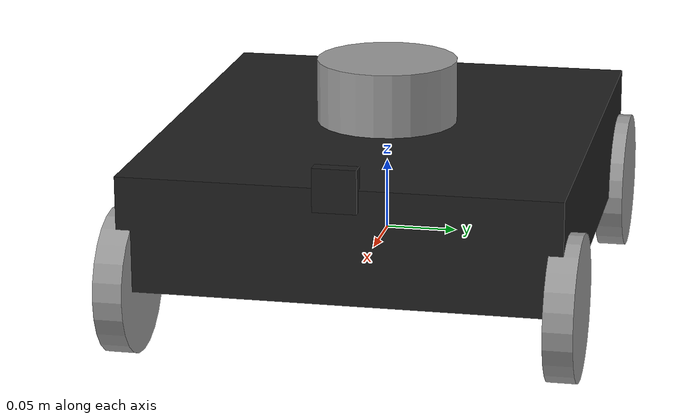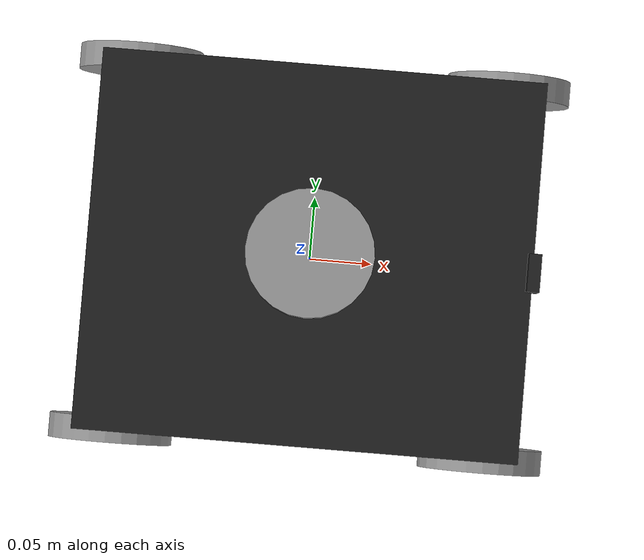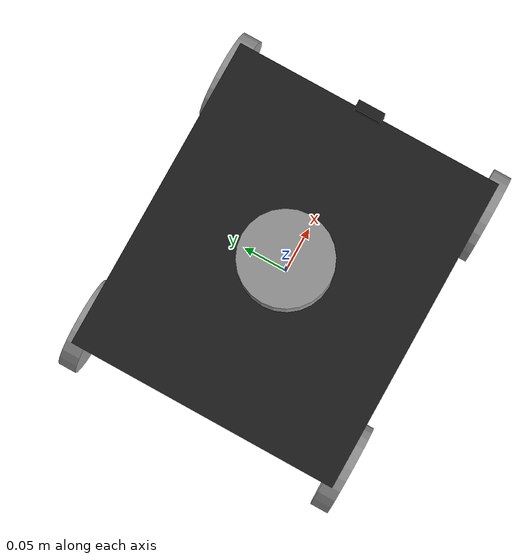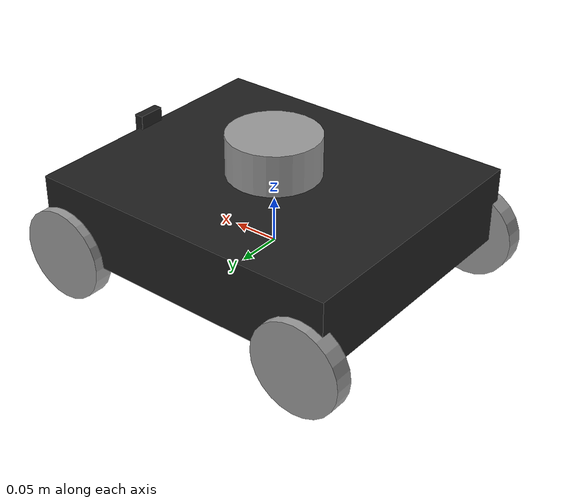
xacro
<?xml version="1.0"?>
<robot xmlns:xacro="http://www.ros.org/wiki/xacro" name="four_wheel_diff_bot">

  <!-- Include general macros and sensors -->
  <xacro:include filename="inertial_macros.xacro" />
  <xacro:include filename="lidar.xacro" />
  <xacro:include filename="depth_camera.xacro" />

  <!-- Robot dimensions and properties -->
  <xacro:property name="chassis_length" value="0.35" />
  <xacro:property name="chassis_width" value="0.3" />
  <xacro:property name="chassis_height" value="0.08" />
  <xacro:property name="chassis_mass" value="4.0" />
  <xacro:property name="wheel_radius" value="0.05" />
  <xacro:property name="wheel_width" value="0.02" />
  <xacro:property name="wheel_mass" value="0.5" />

  <!-- Chassis link -->
  <link name="chassis">
    <inertial>
      <mass value="${chassis_mass}" />
      <origin xyz="0 0 0" rpy="0 0 0" />
      <inertia ixx="0.03" iyy="0.03" izz="0.05" ixy="0.0" ixz="0.0" iyz="0.0" />
    </inertial>
    <visual>
      <geometry>
        <box size="${chassis_length} ${chassis_width} ${chassis_height}" />
      </geometry>
      <origin xyz="0 0 ${chassis_height/2}" rpy="0 0 0" />
      <material name="black" />
    </visual>
    <collision>
      <geometry>
        <box size="${chassis_length} ${chassis_width} ${chassis_height}" />
      </geometry>
      <origin xyz="0 0 ${chassis_height/2}" rpy="0 0 0" />
    </collision>
  </link>

  <!-- Macro to define each wheel and joint -->
  <xacro:macro name="wheel" params="side x y">
    <link name="${side}_wheel">
      <inertial>
        <mass value="${wheel_mass}" />
        <origin xyz="0 0 0" rpy="0 0 0" />
        <inertia ixx="0.001" iyy="0.001" izz="0.002" ixy="0.0" ixz="0.0" iyz="0.0" />
      </inertial>
      <visual>
        <origin xyz="0 0 0" rpy="1.5707 0 0" />
        <geometry>
          <cylinder radius="${wheel_radius}" length="${wheel_width}" />
        </geometry>
        <material name="gray" />
      </visual>
      <collision>
        <origin xyz="0 0 0" rpy="1.5707 0 0" />
        <geometry>
          <cylinder radius="${wheel_radius}" length="${wheel_width}" />
        </geometry>
      </collision>
    </link>

    <joint name="${side}_wheel_joint" type="continuous">
      <parent link="chassis" />
      <child link="${side}_wheel" />
      <origin xyz="${x} ${y} 0" rpy="0 0 0" />
      <axis xyz="0 1 0" />
    </joint>
  </xacro:macro>

  <!-- Wheels: front_left, front_right, rear_left, rear_right -->
  <xacro:wheel side="front_left" x="0.15" y="0.15" />
  <xacro:wheel side="front_right" x="0.15" y="-0.15" />
  <xacro:wheel side="rear_left" x="-0.15" y="0.15" />
  <xacro:wheel side="rear_right" x="-0.15" y="-0.15" />

  <!-- ros2_control transmission interface -->
  <ros2_control name="diff_drive_controller" type="system">
    <hardware>
      <plugin>gazebo_ros2_control/GazeboSystem</plugin>
    </hardware>

    <joint name="front_left_wheel_joint">
      <command_interface name="velocity" />
      <state_interface name="velocity" />
    </joint>
    <joint name="front_right_wheel_joint">
      <command_interface name="velocity" />
      <state_interface name="velocity" />
    </joint>
    <joint name="rear_left_wheel_joint">
      <command_interface name="velocity" />
      <state_interface name="velocity" />
    </joint>
    <joint name="rear_right_wheel_joint">
      <command_interface name="velocity" />
      <state_interface name="velocity" />
    </joint>
  </ros2_control>

</robot>

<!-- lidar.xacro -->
<robot xmlns:xacro="http://www.ros.org/wiki/xacro">
    <!-- Lidar's urdf-->
    <joint name="laser_joint" type="fixed">
        <parent link="chassis" />
        <child link="laser_frame" />
        <origin xyz="0 0 0.1" rpy="0 0 0" />
    </joint>
    <link name="laser_frame">
        <visual>
            <geometry>
                <cylinder radius="0.05" length="0.05" />
            </geometry>
            <material name="grey" />
        </visual>
        <collision>
            <geometry>
                <cylinder radius="0.05" length="0.05" />
            </geometry>
        </collision>
        <xacro:inertial_cylinder mass="0.1" length="0.05" radius="0.05">
            <origin xyz="0 0 0" rpy="0 0 0" />
        </xacro:inertial_cylinder>
    </link>

    <!-- 2D Lidar New Gazebo Sensor Plugin  -->
    <gazebo reference="laser_frame">
        <material>Gazebo/Grey</material>

        <sensor name="laser" type="gpu_lidar">
            <pose> 0 0 0 0 0 0 </pose>
            <always_on>true</always_on>
            <visualize>true</visualize>
            <update_rate>10</update_rate>
            <topic>scan</topic>
            <gz_frame_id>laser_frame</gz_frame_id>
            <lidar>
                <scan>
                    <horizontal>
                        <samples>360</samples>
                        <min_angle>-3.14</min_angle>
                        <max_angle>3.14</max_angle>
                    </horizontal>
                </scan>
                <range>
                    <min>0.3</min>
                    <max>12</max>
                </range>
            </lidar>
        </sensor>
    </gazebo>

</robot>

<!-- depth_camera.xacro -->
<robot xmlns:xacro="http://www.ros.org/wiki/xacro">
    <!-- Depth camera's urdf -->
    <joint name="camera_joint" type="fixed">
        <parent link="chassis" />
        <child link="camera_link" />
        <origin xyz="0.175 0 0.08" rpy="0 0 0" />
    </joint>

    <link name="camera_link">
        <visual>
            <geometry>
                <box size="0.010 0.03 0.03" />
            </geometry>
            <material name="black" />
        </visual>
    </link>

    <!-- Depth camera Optical link -->
    <joint name="camera_optical_joint" type="fixed">
        <parent link="camera_link" />
        <child link="camera_link_optical" />
        <origin xyz="0 0 0" rpy="${-pi/2} 0 ${-pi/2}" />
    </joint>

    <link name="camera_link_optical"></link>

    <!-- Depth camera Gazebo Sensor Plugin -->
    <gazebo reference="camera_link">
        <material>Gazebo/Black</material>

        <sensor name="rgbd_camera" type="rgbd_camera">
            <pose> 0 0 0 0 0 0 </pose>
            <visualize>true</visualize>
            <update_rate>10</update_rate>
            <camera>
                <camera_info_topic>camera/camera_info</camera_info_topic>
                <horizontal_fov>1.089</horizontal_fov>
                <image>
                    <format>R8G8B8</format>
                    <width>640</width>
                    <height>480</height>
                </image>
                <clip>
                    <near>0.05</near>
                    <far>8.0</far>
                </clip>
            </camera>
            <topic>camera</topic>
            <gz_frame_id>camera_link</gz_frame_id>
        </sensor>
    </gazebo>

</robot>
